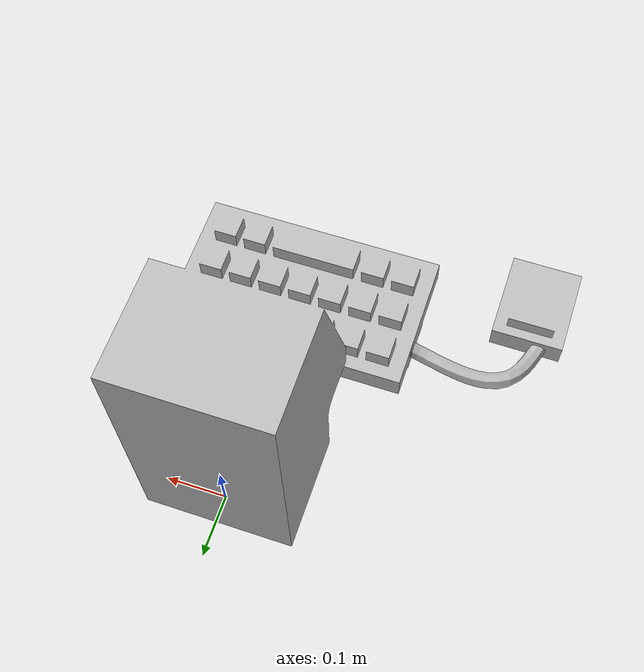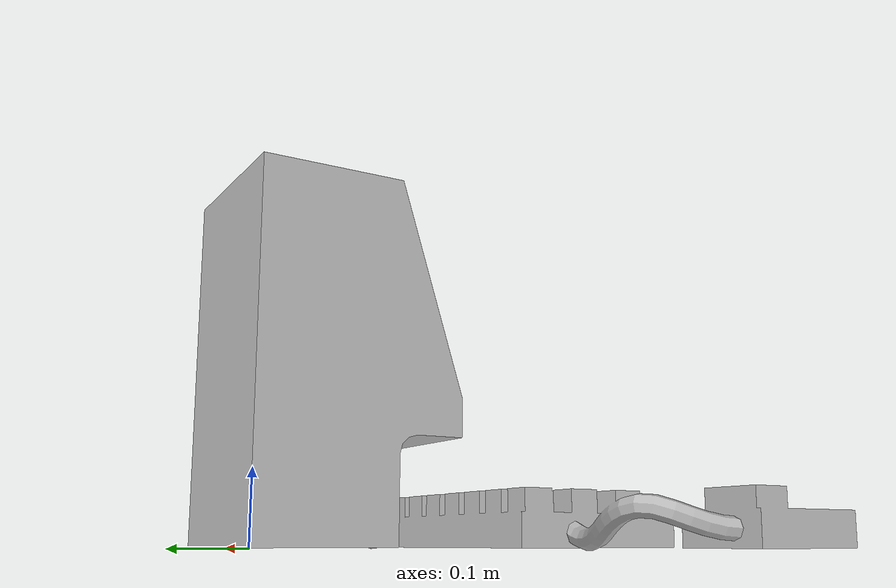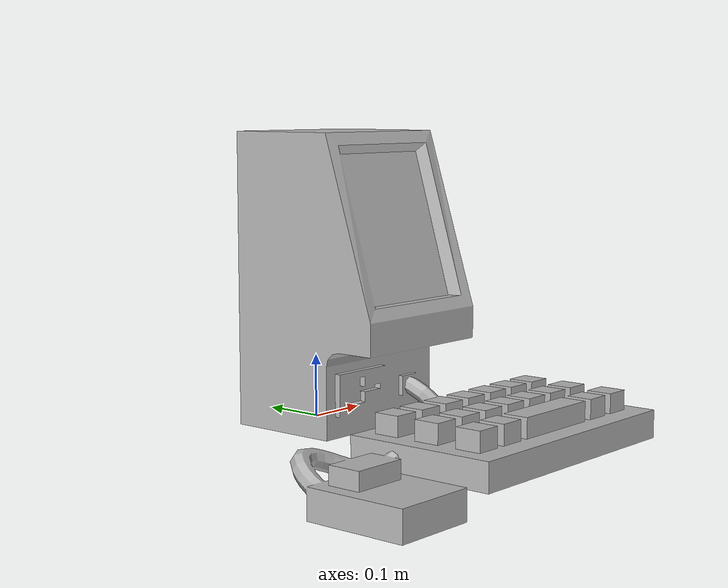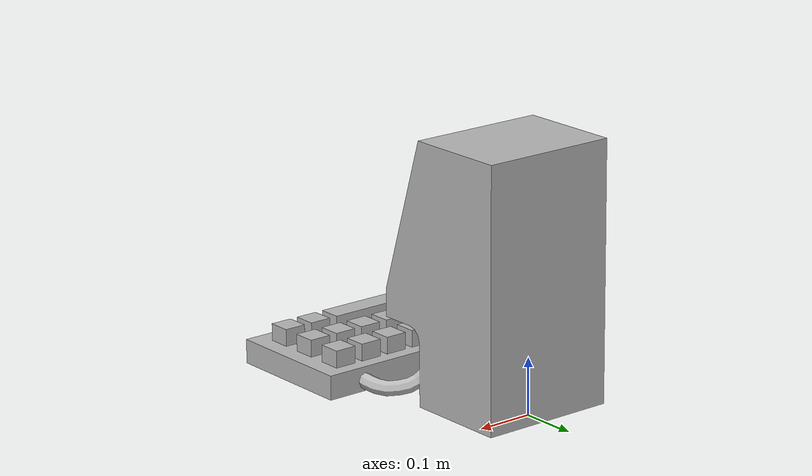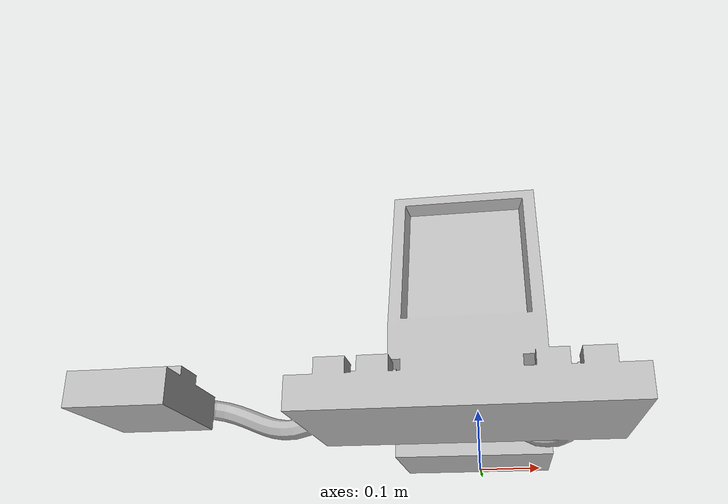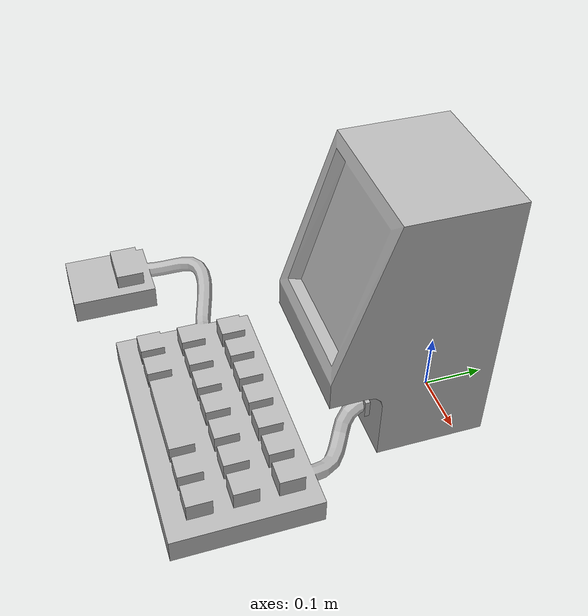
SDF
<?xml version='1.0'?>
<sdf version='1.6'>
  <model name='computer'>
    <link name='link_1'>
         <visual name='visual'>
        <pose frame=''>0 0 0 0 0 0</pose>
        <geometry>
          <mesh>
            <uri>model://computer/meshes/computer.dae</uri>
            <scale>1.0 1.0 1.0</scale>
          </mesh>
        </geometry>
        <cast_shadows>0</cast_shadows>
        <transparency>0</transparency>
      </visual>
        <collision name="collision">
        <geometry>
          <mesh>
            <uri>model://computer/meshes/computer.dae</uri>
            <scale>1.0 1.0 1.0</scale>
          </mesh>
        </geometry>
      </collision>

    </link>

    <static>1</static>
    <allow_auto_disable>1</allow_auto_disable>
  </model>
</sdf>
